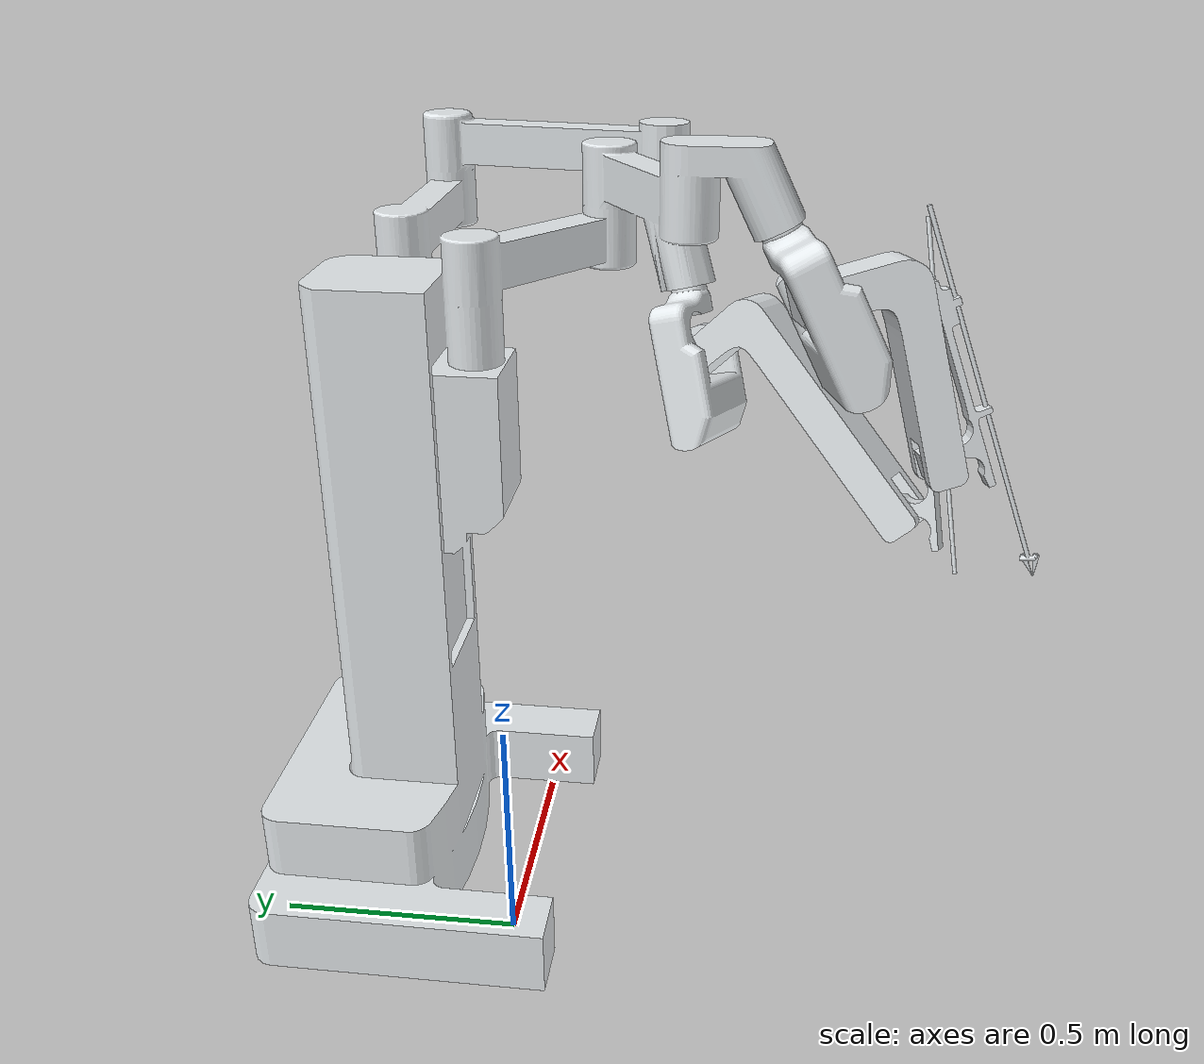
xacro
<?xml version="1.0"?>
<!-- Name your robot here -->
<robot name ="davinci_final" xmlns:xacro="http://wiki.ros.org/xacro">

<!-- Include your urdf files here -->
	<!-- Include Robot's urdf filepath -->
	<!-- Include Lidar's urdf filepath -->
	<xacro:include filename="./davinci_final.urdf"/>

<!-- Add your gazebo sensors here -->
  <gazebo reference="Lens">
    <sensor type="depth" name="camera">
      <always_on>true</always_on>
      <visualize>true</visualize>
      <camera>
          <horizontal_fov>1.047</horizontal_fov>
          <image>
              <width>640</width>
              <height>480</height>
              <format>R8G8B8</format>
          </image>
          <depth_camera>

          </depth_camera>
          <clip>
              <near>0.1</near>
              <far>100</far>
          </clip>
      </camera>
      <plugin name="camera_controller" filename="libgazebo_ros_openni_kinect.so">
          <baseline>0.2</baseline>
          <alwaysOn>true</alwaysOn>
              <updateRate>10.0</updateRate>
              <cameraName>your_camera</cameraName>
              <frameName>your_camera_link</frameName>
          <imageTopicName>rgb/image_raw</imageTopicName>
          <depthImageTopicName>depth/image_raw</depthImageTopicName>
          <pointCloudTopicName>depth/points</pointCloudTopicName>
          <cameraInfoTopicName>rgb/camera_info</cameraInfoTopicName>
          <depthImageCameraInfoTopicName>depth/camera_info</depthImageCameraInfoTopicName>
          <pointCloudCutoff>0.4</pointCloudCutoff>
              <hackBaseline>0.07</hackBaseline>
              <distortionK1>0.0</distortionK1>
              <distortionK2>0.0</distortionK2>
              <distortionK3>0.0</distortionK3>
              <distortionT1>0.0</distortionT1>
              <distortionT2>0.0</distortionT2>
          <CxPrime>0.0</CxPrime>
          <Cx>0.0</Cx>
          <Cy>0.0</Cy>
          <focalLength>0.0</focalLength>
          </plugin>
    </sensor>
  </gazebo>

<!--  Gazebo plugin for control here is already added for you -->

	<gazebo reference="CamL1">
		<turnGravityOff>true</turnGravityOff>
	</gazebo>
	<gazebo reference="CamL2">
		<turnGravityOff>true</turnGravityOff>
	</gazebo>
	<gazebo reference="CamL3">
		<turnGravityOff>true</turnGravityOff>
	</gazebo>
	<gazebo reference="CamL4">
		<turnGravityOff>true</turnGravityOff>
	</gazebo>
	<gazebo reference="Lens">
		<turnGravityOff>true</turnGravityOff>
	</gazebo>
	<gazebo reference="GripL1">
		<turnGravityOff>true</turnGravityOff>
	</gazebo>
	<gazebo reference="GripL2">
		<turnGravityOff>true</turnGravityOff>
	</gazebo>
	<gazebo reference="GripL3">
		<turnGravityOff>true</turnGravityOff>
	</gazebo>
	<gazebo reference="GripL4">
		<turnGravityOff>true</turnGravityOff>
	</gazebo>
		<gazebo reference="Gripper1">
		<turnGravityOff>true</turnGravityOff>
	</gazebo>
		<gazebo reference="Gripper2">
		<turnGravityOff>true</turnGravityOff>
	</gazebo>

	<gazebo>
		<plugin name="gazebo_ros_control" filename="libgazebo_ros_control.so">
			<robotNamespace>/davinci_final/</robotNamespace>
			<robotSimType>gazebo_ros_control/DefaultRobotHWSim</robotSimType>
			<legacyModeNS>true</legacyModeNS>
		</plugin>
	</gazebo>

</robot>

<!-- Unused Code -->

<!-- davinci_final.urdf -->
<robot
  name="davinci_final">

  <link
    name="Base">
    <selfCollide>true</selfCollide>
    <static>false</static>
    <turnGravityOff>false</turnGravityOff>
    <inertial>
      <origin
        xyz="0.655776415641992 0.371290277477391 -0.348427709891903"
        rpy="0 0 0" />
      <mass
        value="752.821481116442" />
      <inertia
        ixx="73.802942907828"
        ixy="5.77266619862716"
        ixz="0.0836249337623942"
        iyy="40.1584646881209"
        iyz="0.465633223789609"
        izz="89.8646886076037" />
    </inertial>
    <visual>
      <origin
        xyz="0 0 0"
        rpy="0 0 0" />
      <geometry>
        <mesh
          filename="package://davinci_final/meshes/Base.STL" />
      </geometry>
      <material
        name="">
        <color
          rgba="0.898039215686275 0.917647058823529 0.929411764705882 1" />
      </material>
    </visual>
    <collision>
      <origin
        xyz="0 0 0"
        rpy="0 0 0" />
      <geometry>
        <mesh
          filename="package://davinci_final/meshes/Base.STL" />
      </geometry>
    </collision>
  </link>
  <link
    name="CamL1">
    <selfCollide>true</selfCollide>
    <static>false</static>
    <turnGravityOff>false</turnGravityOff>
    <inertial>
      <origin
        xyz="0.0474692001406715 -0.199385225285128 -0.00834217911424562"
        rpy="0 0 0" />
      <mass
        value="20.0258937920878" />
      <inertia
        ixx="0.282688719136425"
        ixy="0.00510627369677305"
        ixz="0.000298023161907489"
        iyy="0.121528957018449"
        iyz="0.00686647691342479"
        izz="0.359998883067959" />
    </inertial>
    <visual>
      <origin
        xyz="0 0 0"
        rpy="0 0 0" />
      <geometry>
        <mesh
          filename="package://davinci_final/meshes/CamL1.STL" />
      </geometry>
      <material
        name="">
        <color
          rgba="0.898039215686275 0.917647058823529 0.929411764705882 1" />
      </material>
    </visual>
    <collision>
      <origin
        xyz="0.0474692001406715 -0.199385225285128 -0.00834217911424562"
        rpy="0 0 0" />
      <geometry>
        <mesh
          filename="package://davinci_final/meshes/CamL1.STL" />
      </geometry>
    </collision>
  </link>
  <joint
    name="CamJ1"
    type="revolute">
    <origin
      xyz="1.1675 -0.2702 1.0583"
      rpy="1.8577 -0.12794 2.7468" />
    <parent
      link="Base" />
    <child
      link="CamL1" />
    <axis
      xyz="0 1 0" />
    <limit
      lower="-2.9671"
      upper="2.9671"
      effort="30"
      velocity="6.545" />
  </joint>
  <transmission name="CamT1">
    <type>transmission_interface/SimpleTransmission</type>
    <joint name="CamJ1">
      <hardwareInterface>hardware_interface/PositionJointInterface</hardwareInterface>
    </joint>
    <actuator name="CamA1">
      <mechanicalReduction>1</mechanicalReduction>
      <hardwareInterface>hardware_interface/PositionJointInterface</hardwareInterface>
    </actuator>
  </transmission>
  <link
    name="CamL2">
    <inertial>
      <origin
        xyz="-0.190133273839928 -0.227540797098728 -0.0465637799889496"
        rpy="0 0 0" />
      <mass
        value="24.6272896652191" />
      <inertia
        ixx="1.03614668918094"
        ixy="0.158703022730723"
        ixz="1.58766468499882E-07"
        iyy="0.141636861775166"
        iyz="3.89665757535851E-07"
        izz="1.11526573521401" />
    </inertial>
    <visual>
      <origin
        xyz="0 0 0"
        rpy="0 0 0" />
      <geometry>
        <mesh
          filename="package://davinci_final/meshes/CamL2.STL" />
      </geometry>
      <material
        name="">
        <color
          rgba="0.898039215686275 0.917647058823529 0.929411764705882 1" />
      </material>
    </visual>
    <collision>
      <origin
        xyz="-0.190133273839928 -0.227540797098728 -0.0465637799889496"
        rpy="0 0 0" />
      <geometry>
        <mesh
          filename="package://davinci_final/meshes/CamL2.STL" />
      </geometry>
    </collision>
  </link>
  <joint
    name="CamJ2"
    type="revolute">
    <selfCollide>true</selfCollide>
    <static>false</static>
    <turnGravityOff>false</turnGravityOff>
    <origin
      xyz="0 -0.15979 0"
      rpy="1.5708 -1.0689 -1.5708" />
    <parent
      link="CamL1" />
    <child
      link="CamL2" />
    <axis
      xyz="0 0 1" />
    <limit
      lower="-1.3232"
      upper="1.5"
      effort="20"
      velocity="5.4" />
  </joint>
  <transmission name="CamT2">
    <type>transmission_interface/SimpleTransmission</type>
    <joint name="CamJ2">
      <hardwareInterface>hardware_interface/PositionJointInterface</hardwareInterface>
    </joint>
    <actuator name="CamA2">
      <mechanicalReduction>1</mechanicalReduction>
      <hardwareInterface>hardware_interface/PositionJointInterface</hardwareInterface>
    </actuator>
  </transmission>
  <link
    name="CamL3">
    <inertial>
      <origin
        xyz="0.0716225444215841 0.108810320559619 0.0465639013434742"
        rpy="0 0 0" />
      <mass
        value="1.6680411969325" />
      <inertia
        ixx="0.0338409212016977"
        ixy="0.00586957794347592"
        ixz="5.12441360699112E-09"
        iyy="0.00378033681733235"
        iyz="4.75449797479426E-08"
        izz="0.0372276236828401" />
    </inertial>
    <visual>
      <origin
        xyz="0 0 0"
        rpy="0 0 0" />
      <geometry>
        <mesh
          filename="package://davinci_final/meshes/CamL3.STL" />
      </geometry>
      <material
        name="">
        <color
          rgba="0.898039215686275 0.917647058823529 0.929411764705882 1" />
      </material>
    </visual>
    <collision>
      <origin
        xyz="0.0716225444215841 0.108810320559619 0.0465639013434742"
        rpy="0 0 0" />
      <geometry>
        <mesh
          filename="package://davinci_final/meshes/CamL3.STL" />
      </geometry>
    </collision>
  </link>
  <joint
    name="CamJ3"
    type="revolute">
    <origin
      xyz="-0.2185 -0.59707 0"
      rpy="-3.1416 0 -2.5706" />
    <parent
      link="CamL2" />
    <child
      link="CamL3" />
    <axis
      xyz="0 0 1" />
    <limit
      lower="-1.4"
      upper="1.4"
      effort="30"
      velocity="6.3" />
  </joint>
  <transmission name="CamT3">
    <type>transmission_interface/SimpleTransmission</type>
    <joint name="CamJ3">
      <hardwareInterface>hardware_interface/PositionJointInterface</hardwareInterface>
    </joint>
    <actuator name="CamA3">
      <mechanicalReduction>1</mechanicalReduction>
      <hardwareInterface>hardware_interface/PositionJointInterface</hardwareInterface>
    </actuator>
  </transmission>
  <link
    name="CamL4">
    <inertial>
      <origin
        xyz="-4.44089209850063E-16 0.2612253832557 1.66533453693773E-15"
        rpy="0 0 0" />
      <mass
        value="0.186348243480434" />
      <inertia
        ixx="0.0112553481535252"
        ixy="0.0000"
        ixz="0.0000"
        iyy=".0001"
        iyz="0.00000"
        izz="0.0112553481535252" />
    </inertial>
    <visual>
      <origin
        xyz="0 0 0"
        rpy="0 0 0" />
      <geometry>
        <mesh
          filename="package://davinci_final/meshes/CamL4.STL" />
      </geometry>
      <material
        name="">
        <color
          rgba="0.898039215686275 0.917647058823529 0.929411764705882 1" />
      </material>
    </visual>
    <collision>
      <origin
        xyz="-4.44089209850063E-16 0.2612253832557 1.66533453693773E-15"
        rpy="0 0 0" />
      <geometry>
        <mesh
          filename="package://davinci_final/meshes/CamL4.STL" />
      </geometry>
    </collision>
  </link>
  <joint
    name="CamJ4"
    type="prismatic">
    <origin
      xyz="0.13416 0 0.046564"
      rpy="0 0.49778 0" />
    <parent
      link="CamL3" />
    <child
      link="CamL4" />
    <axis
      xyz="0 1 0" />
    <limit
      lower="-1.337"
      upper="1.1623"
      effort="10"
      velocity="3.2" />
  </joint>
  <transmission name="CamT4">
    <type>transmission_interface/SimpleTransmission</type>
    <joint name="CamJ4">
      <hardwareInterface>hardware_interface/PositionJointInterface</hardwareInterface>
    </joint>
    <actuator name="CamA4">
      <mechanicalReduction>1</mechanicalReduction>
      <hardwareInterface>hardware_interface/PositionJointInterface</hardwareInterface>
    </actuator>
  </transmission>
  <link
    name="Lens">
    <inertial>
      <origin
        xyz="4.10782519111308E-15 -0.00310410505178815 -1.04360964314765E-14"
        rpy="0 0 0" />
      <mass
        value="0.000193183311892924" />
      <inertia
        ixx="1.40001010513605E-09"
        ixy="0.0000"
        ixz="0.0000"
        iyy="2.60085231956011E-09"
        iyz="0.000"
        izz="1.40001010513605E-09" />
    </inertial>
    <collision>
      <origin
        xyz="4.10782519111308E-15 -0.00310410505178815 -1.04360964314765E-14"
        rpy="0 0 0" />
      <geometry>
        <mesh
          filename="package://davinci_final/meshes/Lens.STL" />
      </geometry>
    </collision>
  </link>
  <joint
    name="CamLens"
    type="fixed">
    <origin
      xyz="0 -0.16254 0"
      rpy="0 0 -1.57" />
    <parent
      link="CamL4" />
    <child
      link="Lens" />
    <axis
      xyz="0 1 0" />
  </joint>
  <link
    name="GripL1">
    <inertial>
      <origin
        xyz="0.048910201681391 -0.194431762818423 -0.00814202159208355"
        rpy="0 0 0" />
      <mass
        value="20.51822099096" />
      <inertia
        ixx="0.295731484010267"
        ixy="0.00173664509470263"
        ixz="5.73796512559725E-05"
        iyy="0.123814789210747"
        iyz="0.00769399081512017"
        izz="0.374505986537081" />
    </inertial>
    <visual>
      <origin
        xyz="0 0 0"
        rpy="0 0 0" />
      <geometry>
        <mesh
          filename="package://davinci_final/meshes/GripL1.STL" />
      </geometry>
      <material
        name="">
        <color
          rgba="0.898039215686275 0.917647058823529 0.929411764705882 1" />
      </material>
    </visual>
    <collision>
      <origin
        xyz="0.048910201681391 -0.194431762818423 -0.00814202159208355"
        rpy="0 0 0" />
      <geometry>
        <mesh
          filename="package://davinci_final/meshes/GripL1.STL" />
      </geometry>
    </collision>
  </link>
  <joint
    name="GripJ1"
    type="revolute">
    <origin
      xyz="0.63571 -0.50691 1.3515"
      rpy="2.0171 -0.11609 -2.9083" />
    <parent
      link="Base" />
    <child
      link="GripL1" />
    <axis
      xyz="0 1 0" />
    <limit
      lower="-2.9671"
      upper="2.9671"
      effort="30"
      velocity="6.545" />
  </joint>
  <transmission name="GripT1">
    <type>transmission_interface/SimpleTransmission</type>
    <joint name="GripJ1">
      <hardwareInterface>hardware_interface/PositionJointInterface</hardwareInterface>
    </joint>
    <actuator name="GripA1">
      <mechanicalReduction>1</mechanicalReduction>
      <hardwareInterface>hardware_interface/PositionJointInterface</hardwareInterface>
    </actuator>
  </transmission>
  <link
    name="GripL2">
    <inertial>
      <origin
        xyz="-0.16090054793039 -0.148754937052251 -0.0465640119677332"
        rpy="0 0 0" />
      <mass
        value="17.6001911378671" />
      <inertia
        ixx="0.406795948112077"
        ixy="0.087214765381765"
        ixz="1.00832532802519E-07"
        iyy="0.0994938591810753"
        iyz="2.24146153678627E-07"
        izz="0.461655818314422" />
    </inertial>
    <visual>
      <origin
        xyz="0 0 0"
        rpy="0 0 0" />
      <geometry>
        <mesh
          filename="package://davinci_final/meshes/GripL2.STL" />
      </geometry>
      <material
        name="">
        <color
          rgba="0.898039215686275 0.917647058823529 0.929411764705882 1" />
      </material>
    </visual>
    <collision>
      <origin
        xyz="-0.16090054793039 -0.148754937052251 -0.0465640119677332"
        rpy="0 0 0" />
      <geometry>
        <mesh
          filename="package://davinci_final/meshes/GripL2.STL" />
      </geometry>
    </collision>
  </link>
  <joint
    name="GripJ2"
    type="revolute">
    <origin
      xyz="0 -0.12945 0"
      rpy="-1.5708 -1.3625 1.5708" />
    <parent
      link="GripL1" />
    <child
      link="GripL2" />
    <axis
      xyz="0 0 1" />
    <limit
      lower="-3.7"
      upper="3.2"
      effort="20"
      velocity="5.3" />
  </joint>
  <transmission name="GripT2">
    <type>transmission_interface/SimpleTransmission</type>
    <joint name="GripJ2">
      <hardwareInterface>hardware_interface/PositionJointInterface</hardwareInterface>
    </joint>
    <actuator name="GripA2">
      <mechanicalReduction>50</mechanicalReduction>
      <hardwareInterface>hardware_interface/PositionJointInterface</hardwareInterface>
    </actuator>
  </transmission>
  <link
    name="GripL3">
    <inertial>
      <origin
        xyz="0.0716227364547322 0.108810491075718 0.0465638161492091"
        rpy="0 0 0" />
      <mass
        value="1.66804162014251" />
      <inertia
        ixx="0.0338410007756111"
        ixy="0.0058696014951319"
        ixz="2.00590784303969E-09"
        iyy="0.00378035322035429"
        iyz="1.88494361792312E-08"
        izz="0.037227721413998" />
    </inertial>
    <visual>
      <origin
        xyz="0 0 0"
        rpy="0 0 0" />
      <geometry>
        <mesh
          filename="package://davinci_final/meshes/GripL3.STL" />
      </geometry>
      <material
        name="">
        <color
          rgba="0.898039215686275 0.917647058823529 0.929411764705882 1" />
      </material>
    </visual>
    <collision>
      <origin
        xyz="0.0716227364547322 0.108810491075718 0.0465638161492091"
        rpy="0 0 0" />
      <geometry>
        <mesh
          filename="package://davinci_final/meshes/GripL3.STL" />
      </geometry>
    </collision>
  </link>
  <joint
    name="GripJ3"
    type="revolute">
    <origin
      xyz="-0.1943 -0.42281 0"
      rpy="3.1416 0 3.0389" />
    <parent
      link="GripL2" />
    <child
      link="GripL3" />
    <axis
      xyz="0 0 1" />
    <limit
      lower="-2.3"
      upper="2.3"
      effort="30"
      velocity="5.3" />
  </joint>
  <transmission name="GripT3">
    <type>transmission_interface/SimpleTransmission</type>
    <joint name="GripJ3">
      <hardwareInterface>hardware_interface/PositionJointInterface</hardwareInterface>
    </joint>
    <actuator name="GripA3">
      <mechanicalReduction>1</mechanicalReduction>
      <hardwareInterface>hardware_interface/PositionJointInterface</hardwareInterface>
    </actuator>
  </transmission>
  <link
    name="GripL4">
    <inertial>
      <origin
        xyz="-9.28429899627048E-08 0.0874927043684337 0.000173317510804516"
        rpy="0 0 0" />
      <mass
        value="0.197864622086744" />
      <inertia
        ixx="0.0129770770685318"
        ixy="3.57960670167699E-09"
        ixz="1.73726324992352E-10"
        iyy="4.2305706383531E-06"
        iyz="7.12455755199808E-06"
        izz="0.012978538778816" />
    </inertial>
    <visual>
      <origin
        xyz="0 0 0"
        rpy="0 0 0" />
      <geometry>
        <mesh
          filename="package://davinci_final/meshes/GripL4.STL" />
      </geometry>
      <material
        name="">
        <color
          rgba="0.898039215686275 0.917647058823529 0.929411764705882 1" />
      </material>
    </visual>
    <collision>
      <origin
        xyz="-9.28429899627048E-08 0.0874927043684337 0.000173317510804516"
        rpy="0 0 0" />
      <geometry>
        <mesh
          filename="package://davinci_final/meshes/GripL4.STL" />
      </geometry>
    </collision>
  </link>
  <joint
    name="GripJ4"
    type="prismatic">
    <origin
      xyz="0.13416 0 0.046564"
      rpy="-3.1416 0.72256 -3.1416" />
    <parent
      link="GripL3" />
    <child
      link="GripL4" />
    <axis
      xyz="0 1 0" />
    <limit
      lower="-1.182"
      upper="1.293"
      effort="20"
      velocity="3.4" />
  </joint>
  <transmission name="GripT4">
    <type>transmission_interface/SimpleTransmission</type>
    <joint name="GripJ4">
      <hardwareInterface>hardware_interface/PositionJointInterface</hardwareInterface>
    </joint>
    <actuator name="GripA4">
      <mechanicalReduction>1</mechanicalReduction>
      <hardwareInterface>hardware_interface/PositionJointInterface</hardwareInterface>
    </actuator>
  </transmission>
  <link
    name="Gripper1">
    <inertial>
      <origin
        xyz="0 -0.0169435917441886 0.00900000000000012"
        rpy="0 0 0" />
      <mass
        value="0.00228574536802514" />
      <inertia
        ixx="4.41988903309557E-07"
        ixy="0.0000"
        ixz="0.0000"
        iyy="2.66773822288624E-08"
        iyz="0.000"
        izz="4.6714245529307E-07" />
    </inertial>
    <visual>
      <origin
        xyz="0 0 0"
        rpy="0 0 0" />
      <geometry>
        <mesh
          filename="package://davinci_final/meshes/Gripper1.STL" />
      </geometry>
      <material
        name="">
        <color
          rgba="0.898039215686275 0.917647058823529 0.929411764705882 1" />
      </material>
    </visual>
    <collision>
      <origin
        xyz="0 -0.0169435917441886 0.00900000000000012"
        rpy="0 0 0" />
      <geometry>
        <mesh
          filename="package://davinci_final/meshes/Gripper1.STL" />
      </geometry>
    </collision>
  </link>
  <joint
    name="GripperJ1"
    type="revolute">
    <origin
      xyz="0.015 -0.31338 0"
      rpy="0 0 -0.17792" />
    <parent
      link="GripL4" />
    <child
      link="Gripper1" />
    <axis
      xyz="0 0 1" />
    <limit
      lower="-2.45"
      upper="2.45"
      effort="30"
      velocity="3.4" />
  </joint>
  <transmission name="GripperT1">
    <type>transmission_interface/SimpleTransmission</type>
    <joint name="GripperJ1">
      <hardwareInterface>hardware_interface/PositionJointInterface</hardwareInterface>
    </joint>
    <actuator name="GripA1">
      <mechanicalReduction>1</mechanicalReduction>
      <hardwareInterface>hardware_interface/PositionJointInterface</hardwareInterface>
    </actuator>
  </transmission>
  <link
    name="Gripper2">
    <inertial>
      <origin
        xyz="1.55431223447522E-15 -0.0169435917441881 0.0150183163907054"
        rpy="0 0 0" />
      <mass
        value="0.00228574536802514" />
      <inertia
        ixx="4.41988903309556E-07"
        ixy="0.000"
        ixz="0.0000"
        iyy="2.66773822288622E-08"
        iyz="0.0000"
        izz="4.67142455293068E-07" />
    </inertial>
    <visual>
      <origin
        xyz="0 0 0"
        rpy="0 0 0" />
      <geometry>
        <mesh
          filename="package://davinci_final/meshes/Gripper2.STL" />
      </geometry>
      <material
        name="">
        <color
          rgba="0.898039215686275 0.917647058823529 0.929411764705882 1" />
      </material>
    </visual>
    <collision>
      <origin
        xyz="1.55431223447522E-15 -0.0169435917441881 0.0150183163907054"
        rpy="0 0 0" />
      <geometry>
        <mesh
          filename="package://davinci_final/meshes/Gripper2.STL" />
      </geometry>
    </collision>
  </link>
  <joint
    name="GripperJ2"
    type="fixed">
    <origin
      xyz="-0.015 -0.31338 -0.0060183"
      rpy="0 0 0.35499" />
    <parent
      link="GripL4" />
    <child
      link="Gripper2" />
    <axis
      xyz="0 0 1" />
  </joint>

</robot>
